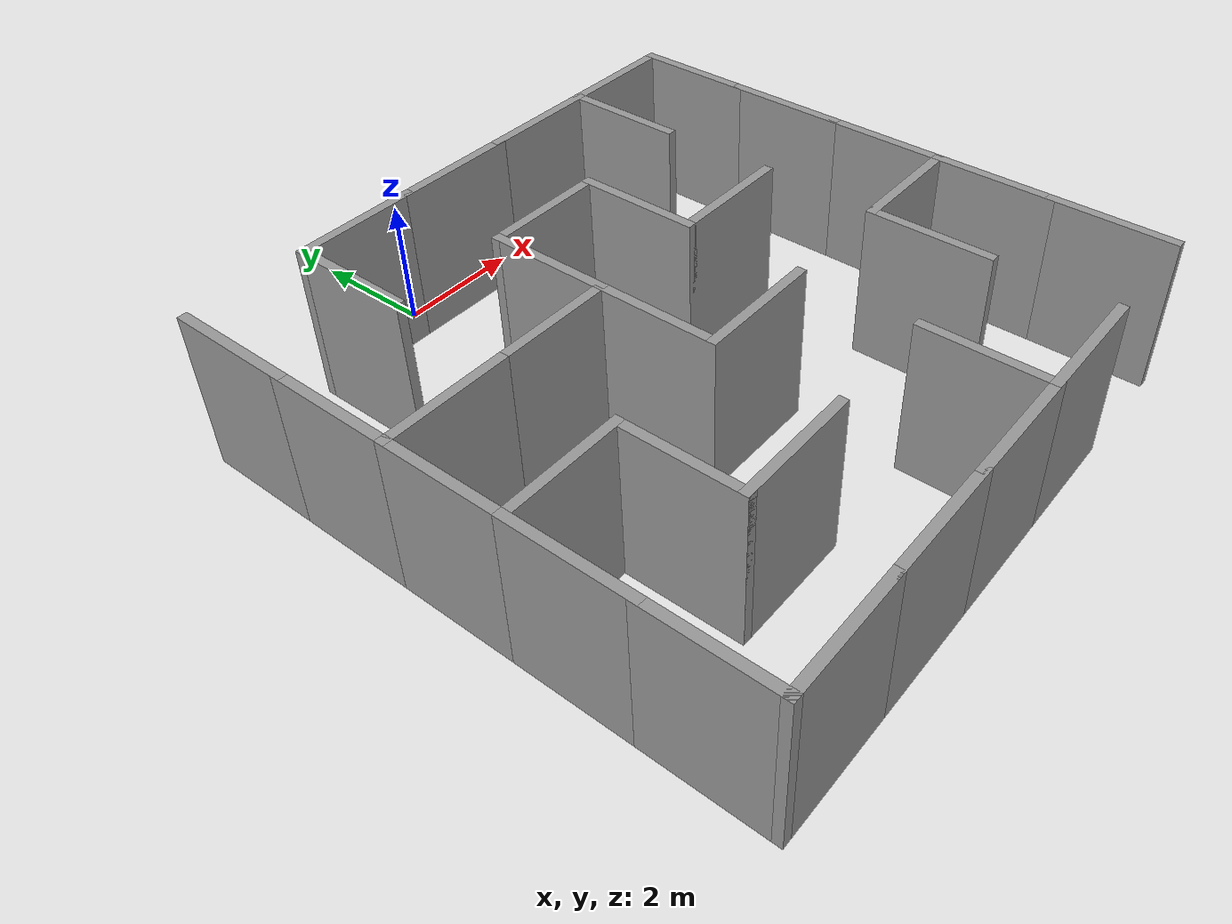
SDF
<?xml version='1.0'?>
<sdf version='1.6'>
  <model name='maze3'>
    <pose frame=''>0.835 -5.085 0 0 -0 0</pose>
    <link name='Wall_1'>
      <collision name='Wall_1_Collision'>
        <geometry>
          <box>
            <size>2 0.15 2.5</size>
          </box>
        </geometry>
        <pose frame=''>0 0 1.25 0 -0 0</pose>
      </collision>
      <visual name='Wall_1_Visual'>
        <pose frame=''>0 0 1.25 0 -0 0</pose>
        <geometry>
          <box>
            <size>2 0.15 2.5</size>
          </box>
        </geometry>
        <material>
          <script>
            <uri>file://media/materials/scripts/gazebo.material</uri>
            <name>Gazebo/Grey</name>
          </script>
          <ambient>1 1 1 1</ambient>
        </material>
        <meta>
          <layer>0</layer>
        </meta>
      </visual>
      <pose frame=''>-1.85 4.625 0 0 -0 0</pose>
    </link>
    <link name='Wall_10'>
      <collision name='Wall_10_Collision'>
        <geometry>
          <box>
            <size>2 0.15 2.5</size>
          </box>
        </geometry>
        <pose frame=''>0 0 1.25 0 -0 0</pose>
      </collision>
      <visual name='Wall_10_Visual'>
        <pose frame=''>0 0 1.25 0 -0 0</pose>
        <geometry>
          <box>
            <size>2 0.15 2.5</size>
          </box>
        </geometry>
        <material>
          <script>
            <uri>file://media/materials/scripts/gazebo.material</uri>
            <name>Gazebo/Grey</name>
          </script>
          <ambient>1 1 1 1</ambient>
        </material>
        <meta>
          <layer>0</layer>
        </meta>
      </visual>
      <pose frame=''>4.625 -1.85 0 0 -0 -1.5708</pose>
    </link>
    <link name='Wall_12'>
      <collision name='Wall_12_Collision'>
        <geometry>
          <box>
            <size>2 0.15 2.5</size>
          </box>
        </geometry>
        <pose frame=''>0 0 1.25 0 -0 0</pose>
      </collision>
      <visual name='Wall_12_Visual'>
        <pose frame=''>0 0 1.25 0 -0 0</pose>
        <geometry>
          <box>
            <size>2 0.15 2.5</size>
          </box>
        </geometry>
        <material>
          <script>
            <uri>file://media/materials/scripts/gazebo.material</uri>
            <name>Gazebo/Grey</name>
          </script>
          <ambient>1 1 1 1</ambient>
        </material>
        <meta>
          <layer>0</layer>
        </meta>
      </visual>
      <pose frame=''>4.625 -3.7 0 0 -0 -1.5708</pose>
    </link>
    <link name='Wall_14'>
      <collision name='Wall_14_Collision'>
        <geometry>
          <box>
            <size>2 0.15 2.5</size>
          </box>
        </geometry>
        <pose frame=''>0 0 1.25 0 -0 0</pose>
      </collision>
      <visual name='Wall_14_Visual'>
        <pose frame=''>0 0 1.25 0 -0 0</pose>
        <geometry>
          <box>
            <size>2 0.15 2.5</size>
          </box>
        </geometry>
        <material>
          <script>
            <uri>file://media/materials/scripts/gazebo.material</uri>
            <name>Gazebo/Grey</name>
          </script>
          <ambient>1 1 1 1</ambient>
        </material>
        <meta>
          <layer>0</layer>
        </meta>
      </visual>
      <pose frame=''>1.85 -4.625 0 0 -0 3.14159</pose>
    </link>
    <link name='Wall_15'>
      <collision name='Wall_15_Collision'>
        <geometry>
          <box>
            <size>2 0.15 2.5</size>
          </box>
        </geometry>
        <pose frame=''>0 0 1.25 0 -0 0</pose>
      </collision>
      <visual name='Wall_15_Visual'>
        <pose frame=''>0 0 1.25 0 -0 0</pose>
        <geometry>
          <box>
            <size>2 0.15 2.5</size>
          </box>
        </geometry>
        <material>
          <script>
            <uri>file://media/materials/scripts/gazebo.material</uri>
            <name>Gazebo/Grey</name>
          </script>
          <ambient>1 1 1 1</ambient>
        </material>
        <meta>
          <layer>0</layer>
        </meta>
      </visual>
      <pose frame=''>-0 -4.625 0 0 -0 3.14159</pose>
    </link>
    <link name='Wall_16'>
      <collision name='Wall_16_Collision'>
        <geometry>
          <box>
            <size>2 0.15 2.5</size>
          </box>
        </geometry>
        <pose frame=''>0 0 1.25 0 -0 0</pose>
      </collision>
      <visual name='Wall_16_Visual'>
        <pose frame=''>0 0 1.25 0 -0 0</pose>
        <geometry>
          <box>
            <size>2 0.15 2.5</size>
          </box>
        </geometry>
        <material>
          <script>
            <uri>file://media/materials/scripts/gazebo.material</uri>
            <name>Gazebo/Grey</name>
          </script>
          <ambient>1 1 1 1</ambient>
        </material>
        <meta>
          <layer>0</layer>
        </meta>
      </visual>
      <pose frame=''>-1.85 -4.625 0 0 -0 3.14159</pose>
    </link>
    <link name='Wall_17'>
      <collision name='Wall_17_Collision'>
        <geometry>
          <box>
            <size>2 0.15 2.5</size>
          </box>
        </geometry>
        <pose frame=''>0 0 1.25 0 -0 0</pose>
      </collision>
      <visual name='Wall_17_Visual'>
        <pose frame=''>0 0 1.25 0 -0 0</pose>
        <geometry>
          <box>
            <size>2 0.15 2.5</size>
          </box>
        </geometry>
        <material>
          <script>
            <uri>file://media/materials/scripts/gazebo.material</uri>
            <name>Gazebo/Grey</name>
          </script>
          <ambient>1 1 1 1</ambient>
        </material>
        <meta>
          <layer>0</layer>
        </meta>
      </visual>
      <pose frame=''>-3.7 -4.625 0 0 -0 3.14159</pose>
    </link>
    <link name='Wall_18'>
      <collision name='Wall_18_Collision'>
        <geometry>
          <box>
            <size>2 0.15 2.5</size>
          </box>
        </geometry>
        <pose frame=''>0 0 1.25 0 -0 0</pose>
      </collision>
      <visual name='Wall_18_Visual'>
        <pose frame=''>0 0 1.25 0 -0 0</pose>
        <geometry>
          <box>
            <size>2 0.15 2.5</size>
          </box>
        </geometry>
        <material>
          <script>
            <uri>file://media/materials/scripts/gazebo.material</uri>
            <name>Gazebo/Grey</name>
          </script>
          <ambient>1 1 1 1</ambient>
        </material>
        <meta>
          <layer>0</layer>
        </meta>
      </visual>
      <pose frame=''>-4.625 -3.7 0 0 -0 1.5708</pose>
    </link>
    <link name='Wall_19'>
      <collision name='Wall_19_Collision'>
        <geometry>
          <box>
            <size>2 0.15 2.5</size>
          </box>
        </geometry>
        <pose frame=''>0 0 1.25 0 -0 0</pose>
      </collision>
      <visual name='Wall_19_Visual'>
        <pose frame=''>0 0 1.25 0 -0 0</pose>
        <geometry>
          <box>
            <size>2 0.15 2.5</size>
          </box>
        </geometry>
        <material>
          <script>
            <uri>file://media/materials/scripts/gazebo.material</uri>
            <name>Gazebo/Grey</name>
          </script>
          <ambient>1 1 1 1</ambient>
        </material>
        <meta>
          <layer>0</layer>
        </meta>
      </visual>
      <pose frame=''>-4.625 -1.85 0 0 -0 1.5708</pose>
    </link>
    <link name='Wall_2'>
      <collision name='Wall_2_Collision'>
        <geometry>
          <box>
            <size>2 0.15 2.5</size>
          </box>
        </geometry>
        <pose frame=''>0 0 1.25 0 -0 0</pose>
      </collision>
      <visual name='Wall_2_Visual'>
        <pose frame=''>0 0 1.25 0 -0 0</pose>
        <geometry>
          <box>
            <size>2 0.15 2.5</size>
          </box>
        </geometry>
        <material>
          <script>
            <uri>file://media/materials/scripts/gazebo.material</uri>
            <name>Gazebo/Grey</name>
          </script>
          <ambient>1 1 1 1</ambient>
        </material>
        <meta>
          <layer>0</layer>
        </meta>
      </visual>
      <pose frame=''>-0 4.625 0 0 -0 0</pose>
    </link>
    <link name='Wall_20'>
      <collision name='Wall_20_Collision'>
        <geometry>
          <box>
            <size>2 0.15 2.5</size>
          </box>
        </geometry>
        <pose frame=''>0 0 1.25 0 -0 0</pose>
      </collision>
      <visual name='Wall_20_Visual'>
        <pose frame=''>0 0 1.25 0 -0 0</pose>
        <geometry>
          <box>
            <size>2 0.15 2.5</size>
          </box>
        </geometry>
        <material>
          <script>
            <uri>file://media/materials/scripts/gazebo.material</uri>
            <name>Gazebo/Grey</name>
          </script>
          <ambient>1 1 1 1</ambient>
        </material>
        <meta>
          <layer>0</layer>
        </meta>
      </visual>
      <pose frame=''>-4.625 -0 0 0 -0 1.5708</pose>
    </link>
    <link name='Wall_21'>
      <collision name='Wall_21_Collision'>
        <geometry>
          <box>
            <size>2 0.15 2.5</size>
          </box>
        </geometry>
        <pose frame=''>0 0 1.25 0 -0 0</pose>
      </collision>
      <visual name='Wall_21_Visual'>
        <pose frame=''>0 0 1.25 0 -0 0</pose>
        <geometry>
          <box>
            <size>2 0.15 2.5</size>
          </box>
        </geometry>
        <material>
          <script>
            <uri>file://media/materials/scripts/gazebo.material</uri>
            <name>Gazebo/Grey</name>
          </script>
          <ambient>1 1 1 1</ambient>
        </material>
        <meta>
          <layer>0</layer>
        </meta>
      </visual>
      <pose frame=''>-4.625 1.85 0 0 -0 1.5708</pose>
    </link>
    <link name='Wall_22'>
      <collision name='Wall_22_Collision'>
        <geometry>
          <box>
            <size>2 0.15 2.5</size>
          </box>
        </geometry>
        <pose frame=''>0 0 1.25 0 -0 0</pose>
      </collision>
      <visual name='Wall_22_Visual'>
        <pose frame=''>0 0 1.25 0 -0 0</pose>
        <geometry>
          <box>
            <size>2 0.15 2.5</size>
          </box>
        </geometry>
        <material>
          <script>
            <uri>file://media/materials/scripts/gazebo.material</uri>
            <name>Gazebo/Grey</name>
          </script>
          <ambient>1 1 1 1</ambient>
        </material>
        <meta>
          <layer>0</layer>
        </meta>
      </visual>
      <pose frame=''>-4.625 3.7 0 0 -0 1.5708</pose>
    </link>
    <link name='Wall_27'>
      <collision name='Wall_27_Collision'>
        <geometry>
          <box>
            <size>2 0.15 2.5</size>
          </box>
        </geometry>
        <pose frame=''>0 0 1.25 0 -0 0</pose>
      </collision>
      <visual name='Wall_27_Visual'>
        <pose frame=''>0 0 1.25 0 -0 0</pose>
        <geometry>
          <box>
            <size>2 0.15 2.5</size>
          </box>
        </geometry>
        <material>
          <script>
            <uri>file://media/materials/scripts/gazebo.material</uri>
            <name>Gazebo/Grey</name>
          </script>
          <ambient>1 1 1 1</ambient>
        </material>
        <meta>
          <layer>0</layer>
        </meta>
      </visual>
      <pose frame=''>-0 2.775 0 0 -0 0</pose>
    </link>
    <link name='Wall_3'>
      <collision name='Wall_3_Collision'>
        <geometry>
          <box>
            <size>2 0.15 2.5</size>
          </box>
        </geometry>
        <pose frame=''>0 0 1.25 0 -0 0</pose>
      </collision>
      <visual name='Wall_3_Visual'>
        <pose frame=''>0 0 1.25 0 -0 0</pose>
        <geometry>
          <box>
            <size>2 0.15 2.5</size>
          </box>
        </geometry>
        <material>
          <script>
            <uri>file://media/materials/scripts/gazebo.material</uri>
            <name>Gazebo/Grey</name>
          </script>
          <ambient>1 1 1 1</ambient>
        </material>
        <meta>
          <layer>0</layer>
        </meta>
      </visual>
      <pose frame=''>1.85 4.625 0 0 -0 0</pose>
    </link>
    <link name='Wall_33'>
      <collision name='Wall_33_Collision'>
        <geometry>
          <box>
            <size>2 0.15 2.5</size>
          </box>
        </geometry>
        <pose frame=''>0 0 1.25 0 -0 0</pose>
      </collision>
      <visual name='Wall_33_Visual'>
        <pose frame=''>0 0 1.25 0 -0 0</pose>
        <geometry>
          <box>
            <size>2 0.15 2.5</size>
          </box>
        </geometry>
        <material>
          <script>
            <uri>file://media/materials/scripts/gazebo.material</uri>
            <name>Gazebo/Grey</name>
          </script>
          <ambient>1 1 1 1</ambient>
        </material>
        <meta>
          <layer>0</layer>
        </meta>
      </visual>
      <pose frame=''>-3.7 0.925 0 0 -0 0</pose>
    </link>
    <link name='Wall_34'>
      <collision name='Wall_34_Collision'>
        <geometry>
          <box>
            <size>2 0.15 2.5</size>
          </box>
        </geometry>
        <pose frame=''>0 0 1.25 0 -0 0</pose>
      </collision>
      <visual name='Wall_34_Visual'>
        <pose frame=''>0 0 1.25 0 -0 0</pose>
        <geometry>
          <box>
            <size>2 0.15 2.5</size>
          </box>
        </geometry>
        <material>
          <script>
            <uri>file://media/materials/scripts/gazebo.material</uri>
            <name>Gazebo/Grey</name>
          </script>
          <ambient>1 1 1 1</ambient>
        </material>
        <meta>
          <layer>0</layer>
        </meta>
      </visual>
      <pose frame=''>-1.85 0.925 0 0 -0 0</pose>
    </link>
    <link name='Wall_39'>
      <collision name='Wall_39_Collision'>
        <geometry>
          <box>
            <size>2 0.15 2.5</size>
          </box>
        </geometry>
        <pose frame=''>0 0 1.25 0 -0 0</pose>
      </collision>
      <visual name='Wall_39_Visual'>
        <pose frame=''>0 0 1.25 0 -0 0</pose>
        <geometry>
          <box>
            <size>2 0.15 2.5</size>
          </box>
        </geometry>
        <material>
          <script>
            <uri>file://media/materials/scripts/gazebo.material</uri>
            <name>Gazebo/Grey</name>
          </script>
          <ambient>1 1 1 1</ambient>
        </material>
        <meta>
          <layer>0</layer>
        </meta>
      </visual>
      <pose frame=''>-3.7 -0.925 0 0 -0 0</pose>
    </link>
    <link name='Wall_41'>
      <collision name='Wall_41_Collision'>
        <geometry>
          <box>
            <size>2 0.15 2.5</size>
          </box>
        </geometry>
        <pose frame=''>0 0 1.25 0 -0 0</pose>
      </collision>
      <visual name='Wall_41_Visual'>
        <pose frame=''>0 0 1.25 0 -0 0</pose>
        <geometry>
          <box>
            <size>2 0.15 2.5</size>
          </box>
        </geometry>
        <material>
          <script>
            <uri>file://media/materials/scripts/gazebo.material</uri>
            <name>Gazebo/Grey</name>
          </script>
          <ambient>1 1 1 1</ambient>
        </material>
        <meta>
          <layer>0</layer>
        </meta>
      </visual>
      <pose frame=''>-0 -0.925 0 0 -0 0</pose>
    </link>
    <link name='Wall_43'>
      <collision name='Wall_43_Collision'>
        <geometry>
          <box>
            <size>2 0.15 2.5</size>
          </box>
        </geometry>
        <pose frame=''>0 0 1.25 0 -0 0</pose>
      </collision>
      <visual name='Wall_43_Visual'>
        <pose frame=''>0 0 1.25 0 -0 0</pose>
        <geometry>
          <box>
            <size>2 0.15 2.5</size>
          </box>
        </geometry>
        <material>
          <script>
            <uri>file://media/materials/scripts/gazebo.material</uri>
            <name>Gazebo/Grey</name>
          </script>
          <ambient>1 1 1 1</ambient>
        </material>
        <meta>
          <layer>0</layer>
        </meta>
      </visual>
      <pose frame=''>3.7 -0.925 0 0 -0 0</pose>
    </link>
    <link name='Wall_48'>
      <collision name='Wall_48_Collision'>
        <geometry>
          <box>
            <size>2 0.15 2.5</size>
          </box>
        </geometry>
        <pose frame=''>0 0 1.25 0 -0 0</pose>
      </collision>
      <visual name='Wall_48_Visual'>
        <pose frame=''>0 0 1.25 0 -0 0</pose>
        <geometry>
          <box>
            <size>2 0.15 2.5</size>
          </box>
        </geometry>
        <material>
          <script>
            <uri>file://media/materials/scripts/gazebo.material</uri>
            <name>Gazebo/Grey</name>
          </script>
          <ambient>1 1 1 1</ambient>
        </material>
        <meta>
          <layer>0</layer>
        </meta>
      </visual>
      <pose frame=''>-1.85 -2.775 0 0 -0 0</pose>
    </link>
    <link name='Wall_5'>
      <collision name='Wall_5_Collision'>
        <geometry>
          <box>
            <size>2 0.15 2.5</size>
          </box>
        </geometry>
        <pose frame=''>0 0 1.25 0 -0 0</pose>
      </collision>
      <visual name='Wall_5_Visual'>
        <pose frame=''>0 0 1.25 0 -0 0</pose>
        <geometry>
          <box>
            <size>2 0.15 2.5</size>
          </box>
        </geometry>
        <material>
          <script>
            <uri>file://media/materials/scripts/gazebo.material</uri>
            <name>Gazebo/Grey</name>
          </script>
          <ambient>1 1 1 1</ambient>
        </material>
        <meta>
          <layer>0</layer>
        </meta>
      </visual>
      <pose frame=''>3.7 4.625 0 0 -0 0</pose>
    </link>
    <link name='Wall_53'>
      <collision name='Wall_53_Collision'>
        <geometry>
          <box>
            <size>2 0.15 2.5</size>
          </box>
        </geometry>
        <pose frame=''>0 0 1.25 0 -0 0</pose>
      </collision>
      <visual name='Wall_53_Visual'>
        <pose frame=''>0 0 1.25 0 -0 0</pose>
        <geometry>
          <box>
            <size>2 0.15 2.5</size>
          </box>
        </geometry>
        <material>
          <script>
            <uri>file://media/materials/scripts/gazebo.material</uri>
            <name>Gazebo/Grey</name>
          </script>
          <ambient>1 1 1 1</ambient>
        </material>
        <meta>
          <layer>0</layer>
        </meta>
      </visual>
      <pose frame=''>-2.775 3.7 0 0 -0 -1.5708</pose>
    </link>
    <link name='Wall_56'>
      <collision name='Wall_56_Collision'>
        <geometry>
          <box>
            <size>2 0.15 2.5</size>
          </box>
        </geometry>
        <pose frame=''>0 0 1.25 0 -0 0</pose>
      </collision>
      <visual name='Wall_56_Visual'>
        <pose frame=''>0 0 1.25 0 -0 0</pose>
        <geometry>
          <box>
            <size>2 0.15 2.5</size>
          </box>
        </geometry>
        <material>
          <script>
            <uri>file://media/materials/scripts/gazebo.material</uri>
            <name>Gazebo/Grey</name>
          </script>
          <ambient>1 1 1 1</ambient>
        </material>
        <meta>
          <layer>0</layer>
        </meta>
      </visual>
      <pose frame=''>-2.775 -1.85 0 0 -0 -1.5708</pose>
    </link>
    <link name='Wall_6'>
      <collision name='Wall_6_Collision'>
        <geometry>
          <box>
            <size>2 0.15 2.5</size>
          </box>
        </geometry>
        <pose frame=''>0 0 1.25 0 -0 0</pose>
      </collision>
      <visual name='Wall_6_Visual'>
        <pose frame=''>0 0 1.25 0 -0 0</pose>
        <geometry>
          <box>
            <size>2 0.15 2.5</size>
          </box>
        </geometry>
        <material>
          <script>
            <uri>file://media/materials/scripts/gazebo.material</uri>
            <name>Gazebo/Grey</name>
          </script>
          <ambient>1 1 1 1</ambient>
        </material>
        <meta>
          <layer>0</layer>
        </meta>
      </visual>
      <pose frame=''>4.625 3.7 0 0 -0 -1.5708</pose>
    </link>
    <link name='Wall_62'>
      <collision name='Wall_62_Collision'>
        <geometry>
          <box>
            <size>2 0.15 2.5</size>
          </box>
        </geometry>
        <pose frame=''>0 0 1.25 0 -0 0</pose>
      </collision>
      <visual name='Wall_62_Visual'>
        <pose frame=''>0 0 1.25 0 -0 0</pose>
        <geometry>
          <box>
            <size>2 0.15 2.5</size>
          </box>
        </geometry>
        <material>
          <script>
            <uri>file://media/materials/scripts/gazebo.material</uri>
            <name>Gazebo/Grey</name>
          </script>
          <ambient>1 1 1 1</ambient>
        </material>
        <meta>
          <layer>0</layer>
        </meta>
      </visual>
      <pose frame=''>-0.925 1.85 0 0 -0 -1.5708</pose>
    </link>
    <link name='Wall_63'>
      <collision name='Wall_63_Collision'>
        <geometry>
          <box>
            <size>2 0.15 2.5</size>
          </box>
        </geometry>
        <pose frame=''>0 0 1.25 0 -0 0</pose>
      </collision>
      <visual name='Wall_63_Visual'>
        <pose frame=''>0 0 1.25 0 -0 0</pose>
        <geometry>
          <box>
            <size>2 0.15 2.5</size>
          </box>
        </geometry>
        <material>
          <script>
            <uri>file://media/materials/scripts/gazebo.material</uri>
            <name>Gazebo/Grey</name>
          </script>
          <ambient>1 1 1 1</ambient>
        </material>
        <meta>
          <layer>0</layer>
        </meta>
      </visual>
      <pose frame=''>-0.925 -0 0 0 -0 -1.5708</pose>
    </link>
    <link name='Wall_68'>
      <collision name='Wall_68_Collision'>
        <geometry>
          <box>
            <size>2 0.15 2.5</size>
          </box>
        </geometry>
        <pose frame=''>0 0 1.25 0 -0 0</pose>
      </collision>
      <visual name='Wall_68_Visual'>
        <pose frame=''>0 0 1.25 0 -0 0</pose>
        <geometry>
          <box>
            <size>2 0.15 2.5</size>
          </box>
        </geometry>
        <material>
          <script>
            <uri>file://media/materials/scripts/gazebo.material</uri>
            <name>Gazebo/Grey</name>
          </script>
          <ambient>1 1 1 1</ambient>
        </material>
        <meta>
          <layer>0</layer>
        </meta>
      </visual>
      <pose frame=''>0.925 1.85 0 0 -0 -1.5708</pose>
    </link>
    <link name='Wall_74'>
      <collision name='Wall_74_Collision'>
        <geometry>
          <box>
            <size>2 0.15 2.5</size>
          </box>
        </geometry>
        <pose frame=''>0 0 1.25 0 -0 0</pose>
      </collision>
      <visual name='Wall_74_Visual'>
        <pose frame=''>0 0 1.25 0 -0 0</pose>
        <geometry>
          <box>
            <size>2 0.15 2.5</size>
          </box>
        </geometry>
        <material>
          <script>
            <uri>file://media/materials/scripts/gazebo.material</uri>
            <name>Gazebo/Grey</name>
          </script>
          <ambient>1 1 1 1</ambient>
        </material>
        <meta>
          <layer>0</layer>
        </meta>
      </visual>
      <pose frame=''>2.775 -1.85 0 0 -0 1.5708</pose>
    </link>
    <link name='Wall_77'>
      <collision name='Wall_77_Collision'>
        <geometry>
          <box>
            <size>2 0.15 2.5</size>
          </box>
        </geometry>
        <pose frame=''>0 0 1.25 0 -0 0</pose>
      </collision>
      <visual name='Wall_77_Visual'>
        <pose frame=''>0 0 1.25 0 -0 0</pose>
        <geometry>
          <box>
            <size>2 0.15 2.5</size>
          </box>
        </geometry>
        <material>
          <script>
            <uri>file://media/materials/scripts/gazebo.material</uri>
            <name>Gazebo/Grey</name>
          </script>
          <ambient>1 1 1 1</ambient>
        </material>
        <meta>
          <layer>0</layer>
        </meta>
      </visual>
      <pose frame=''>2.775 3.7 0 0 -0 1.5708</pose>
    </link>
    <link name='Wall_79'>
      <collision name='Wall_79_Collision'>
        <geometry>
          <box>
            <size>2 0.15 2.5</size>
          </box>
        </geometry>
        <pose frame=''>0 0 1.25 0 -0 0</pose>
      </collision>
      <visual name='Wall_79_Visual'>
        <pose frame=''>0 0 1.25 0 -0 0</pose>
        <geometry>
          <box>
            <size>2 0.15 2.5</size>
          </box>
        </geometry>
        <material>
          <script>
            <uri>file://media/materials/scripts/gazebo.material</uri>
            <name>Gazebo/Grey</name>
          </script>
          <ambient>1 1 1 1</ambient>
        </material>
        <meta>
          <layer>0</layer>
        </meta>
      </visual>
      <pose frame=''>1.85 0.925 0 0 -0 0</pose>
    </link>
    <link name='Wall_8'>
      <collision name='Wall_8_Collision'>
        <geometry>
          <box>
            <size>2 0.15 2.5</size>
          </box>
        </geometry>
        <pose frame=''>0 0 1.25 0 -0 0</pose>
      </collision>
      <visual name='Wall_8_Visual'>
        <pose frame=''>0 0 1.25 0 -0 0</pose>
        <geometry>
          <box>
            <size>2 0.15 2.5</size>
          </box>
        </geometry>
        <material>
          <script>
            <uri>file://media/materials/scripts/gazebo.material</uri>
            <name>Gazebo/Grey</name>
          </script>
          <ambient>1 1 1 1</ambient>
        </material>
        <meta>
          <layer>0</layer>
        </meta>
      </visual>
      <pose frame=''>4.625 1.85 0 0 -0 -1.5708</pose>
    </link>
    <link name='Wall_81'>
      <collision name='Wall_81_Collision'>
        <geometry>
          <box>
            <size>2 0.15 2.5</size>
          </box>
        </geometry>
        <pose frame=''>0 0 1.25 0 -0 0</pose>
      </collision>
      <visual name='Wall_81_Visual'>
        <pose frame=''>0 0 1.25 0 -0 0</pose>
        <geometry>
          <box>
            <size>2 0.15 2.5</size>
          </box>
        </geometry>
        <material>
          <script>
            <uri>file://media/materials/scripts/gazebo.material</uri>
            <name>Gazebo/Grey</name>
          </script>
          <ambient>1 1 1 1</ambient>
        </material>
        <meta>
          <layer>0</layer>
        </meta>
      </visual>
      <pose frame=''>0.925 -3.7 0 0 -0 -1.5708</pose>
    </link>
    <link name='Wall_9'>
      <collision name='Wall_9_Collision'>
        <geometry>
          <box>
            <size>2 0.15 2.5</size>
          </box>
        </geometry>
        <pose frame=''>0 0 1.25 0 -0 0</pose>
      </collision>
      <visual name='Wall_9_Visual'>
        <pose frame=''>0 0 1.25 0 -0 0</pose>
        <geometry>
          <box>
            <size>2 0.15 2.5</size>
          </box>
        </geometry>
        <material>
          <script>
            <uri>file://media/materials/scripts/gazebo.material</uri>
            <name>Gazebo/Grey</name>
          </script>
          <ambient>1 1 1 1</ambient>
        </material>
        <meta>
          <layer>0</layer>
        </meta>
      </visual>
      <pose frame=''>4.625 -0 0 0 -0 -1.5708</pose>
    </link>
    <static>1</static>
  </model>
</sdf>
